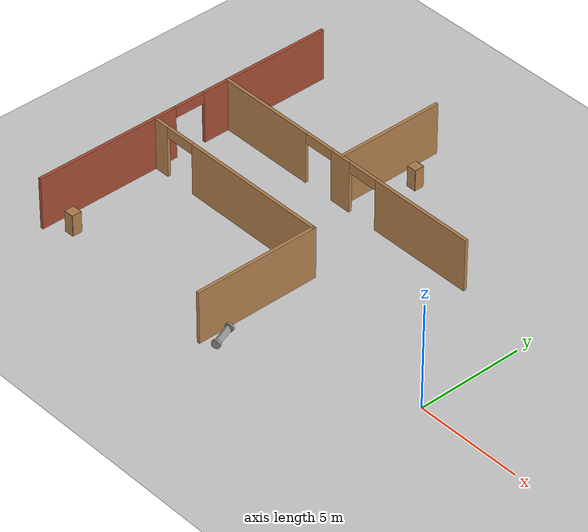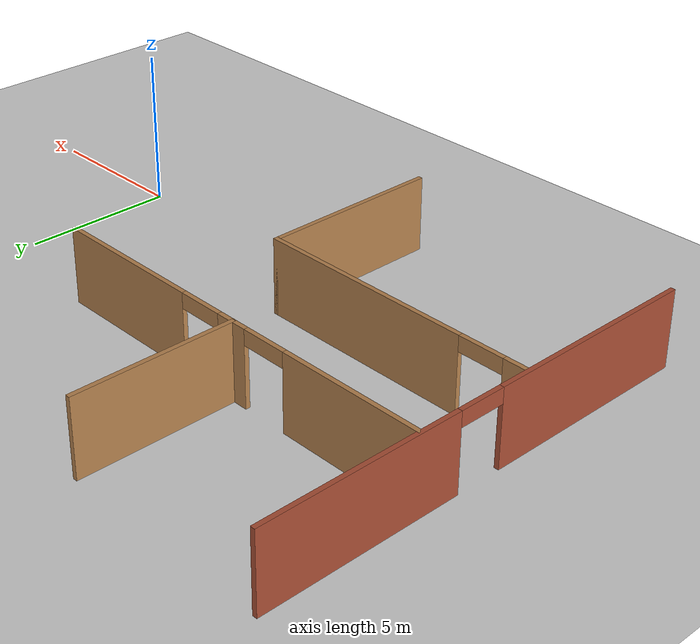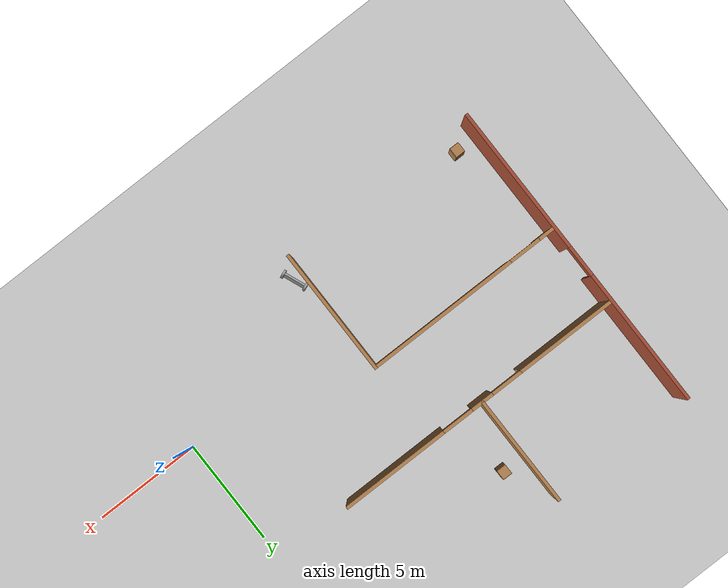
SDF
<sdf version="1.6">
 <world name="default">
  <model name="ground_plane">
   <static>1</static>
   <link name="link">
    <collision name="collision">
     <geometry><plane><normal>0 0 1</normal><size>100 100</size></plane></geometry>
     <surface><friction><ode><mu>100</mu><mu2>50</mu2></ode></friction></surface>
    </collision>
    <visual name="visual">
     <cast_shadows>0</cast_shadows>
     <geometry><plane><normal>0 0 1</normal><size>100 100</size></plane></geometry>
     <material>
      <script><uri>file://media/materials/scripts/gazebo.material</uri><name>Gazebo/Grey</name></script>
     </material>
    </visual>
   </link>
  </model>
  <model name="robot">
   <link name="link_0">
    <pose>0 0 -0.000101 0 -0 0</pose>
    <inertial>
     <mass>1</mass>
     <inertia>
      <ixx>0.166667</ixx>
      <ixy>0</ixy>
      <ixz>0</ixz>
      <iyy>0.166667</iyy>
      <iyz>0</iyz>
      <izz>0.166667</izz>
     </inertia>
    </inertial>
    <visual name="visual">
     <geometry><box><size>0.3 1 0.1</size></box></geometry>
     <material>
      <lighting>1</lighting>
      <script><uri>file://media/materials/scripts/gazebo.material</uri><name>Gazebo/Grey</name></script>
      <shader type="pixel"><normal_map>__default__</normal_map></shader>
      <ambient>0.3 0.3 0.3 1</ambient>
      <diffuse>0.7 0.7 0.7 1</diffuse>
      <specular>0.01 0.01 0.01 1</specular>
      <emissive>0 0 0 1</emissive>
     </material>
    </visual>
    <collision name="collision">
     <geometry><box><size>0.3 1 0.1</size></box></geometry>
     <surface>
      <friction>
       <ode><mu>1</mu><mu2>1</mu2><fdir1>0 0 0</fdir1><slip1>0</slip1><slip2>0</slip2></ode>
       <torsional>
        <coefficient>1</coefficient>
        <patch_radius>0</patch_radius>
        <surface_radius>0</surface_radius>
        <use_patch_radius>1</use_patch_radius>
        <ode><slip>0</slip></ode>
       </torsional>
      </friction>
      <bounce><restitution_coefficient>0</restitution_coefficient><threshold>1e+06</threshold></bounce>
      <contact>
       <collide_without_contact>0</collide_without_contact>
       <collide_without_contact_bitmask>1</collide_without_contact_bitmask>
       <collide_bitmask>1</collide_bitmask>
       <ode>
        <soft_cfm>0</soft_cfm>
        <soft_erp>0.2</soft_erp>
        <kp>1e+13</kp>
        <kd>1</kd>
        <max_vel>0.01</max_vel>
        <min_depth>0</min_depth>
       </ode>
       <bullet>
        <split_impulse>1</split_impulse>
        <split_impulse_penetration_threshold>-0.01</split_impulse_penetration_threshold>
        <soft_cfm>0</soft_cfm>
        <soft_erp>0.2</soft_erp>
        <kp>1e+13</kp>
        <kd>1</kd>
       </bullet>
      </contact>
     </surface>
    </collision>
   </link>
   <link name="link_1">
    <pose>0 -0.550019 -0.000101 1.5707 -0 0</pose>
    <inertial>
     <mass>1</mass>
     <inertia><ixx>0.145833</ixx><ixy>0</ixy><ixz>0</ixz><iyy>0.145833</iyy><iyz>0</iyz><izz>0.125</izz></inertia>
    </inertial>
    <visual name="visual">
     <geometry><cylinder><radius>0.2</radius><length>0.1</length></cylinder></geometry>
     <material>
      <lighting>1</lighting>
      <script><uri>file://media/materials/scripts/gazebo.material</uri><name>Gazebo/Grey</name></script>
      <shader type="pixel"><normal_map>__default__</normal_map></shader>
      <ambient>0.3 0.3 0.3 1</ambient>
      <diffuse>0.7 0.7 0.7 1</diffuse>
      <specular>0.01 0.01 0.01 1</specular>
      <emissive>0 0 0 1</emissive>
     </material>
    </visual>
    <collision name="collision">
     <geometry><cylinder><radius>0.2</radius><length>0.1</length></cylinder></geometry>
     <surface>
      <friction>
       <ode><mu>1</mu><mu2>1</mu2><fdir1>0 0 0</fdir1><slip1>0</slip1><slip2>0</slip2></ode>
       <torsional>
        <coefficient>1</coefficient>
        <patch_radius>0</patch_radius>
        <surface_radius>0</surface_radius>
        <use_patch_radius>1</use_patch_radius>
        <ode><slip>0</slip></ode>
       </torsional>
      </friction>
      <bounce><restitution_coefficient>0</restitution_coefficient><threshold>1e+06</threshold></bounce>
      <contact>
       <collide_without_contact>0</collide_without_contact>
       <collide_without_contact_bitmask>1</collide_without_contact_bitmask>
       <collide_bitmask>1</collide_bitmask>
       <ode>
        <soft_cfm>0</soft_cfm>
        <soft_erp>0.2</soft_erp>
        <kp>1e+13</kp>
        <kd>1</kd>
        <max_vel>0.01</max_vel>
        <min_depth>0</min_depth>
       </ode>
       <bullet>
        <split_impulse>1</split_impulse>
        <split_impulse_penetration_threshold>-0.01</split_impulse_penetration_threshold>
        <soft_cfm>0</soft_cfm>
        <soft_erp>0.2</soft_erp>
        <kp>1e+13</kp>
        <kd>1</kd>
       </bullet>
      </contact>
     </surface>
    </collision>
   </link>
   <link name="link_1_clone">
    <pose>0 0.550019 0.000202 1.5707 -0 0</pose>
    <inertial>
     <mass>1</mass>
     <inertia><ixx>0.145833</ixx><ixy>0</ixy><ixz>0</ixz><iyy>0.145833</iyy><iyz>0</iyz><izz>0.125</izz></inertia>
    </inertial>
    <visual name="visual">
     <geometry><cylinder><radius>0.2</radius><length>0.1</length></cylinder></geometry>
     <material>
      <lighting>1</lighting>
      <script><uri>file://media/materials/scripts/gazebo.material</uri><name>Gazebo/Grey</name></script>
      <shader type="pixel"><normal_map>__default__</normal_map></shader>
      <ambient>0.3 0.3 0.3 1</ambient>
      <diffuse>0.7 0.7 0.7 1</diffuse>
      <specular>0.01 0.01 0.01 1</specular>
      <emissive>0 0 0 1</emissive>
     </material>
    </visual>
    <collision name="collision">
     <geometry><cylinder><radius>0.2</radius><length>0.1</length></cylinder></geometry>
     <surface>
      <friction>
       <ode><mu>1</mu><mu2>1</mu2><fdir1>0 0 0</fdir1><slip1>0</slip1><slip2>0</slip2></ode>
       <torsional>
        <coefficient>1</coefficient>
        <patch_radius>0</patch_radius>
        <surface_radius>0</surface_radius>
        <use_patch_radius>1</use_patch_radius>
        <ode><slip>0</slip></ode>
       </torsional>
      </friction>
      <bounce><restitution_coefficient>0</restitution_coefficient><threshold>1e+06</threshold></bounce>
      <contact>
       <collide_without_contact>0</collide_without_contact>
       <collide_without_contact_bitmask>1</collide_without_contact_bitmask>
       <collide_bitmask>1</collide_bitmask>
       <ode>
        <soft_cfm>0</soft_cfm>
        <soft_erp>0.2</soft_erp>
        <kp>1e+13</kp>
        <kd>1</kd>
        <max_vel>0.01</max_vel>
        <min_depth>0</min_depth>
       </ode>
       <bullet>
        <split_impulse>1</split_impulse>
        <split_impulse_penetration_threshold>-0.01</split_impulse_penetration_threshold>
        <soft_cfm>0</soft_cfm>
        <soft_erp>0.2</soft_erp>
        <kp>1e+13</kp>
        <kd>1</kd>
       </bullet>
      </contact>
     </surface>
    </collision>
   </link>
   <joint name="link_0_JOINT_1" type="revolute">
    <parent>link_0</parent>
    <child>link_1</child>
    <axis>
     <xyz>0 0 1</xyz>
     <use_parent_model_frame>0</use_parent_model_frame>
     <limit>
      <lower>-1.79769e+308</lower>
      <upper>1.79769e+308</upper>
      <effort>-1</effort>
      <velocity>-1</velocity>
     </limit>
     <dynamics>
      <spring_reference>0</spring_reference>
      <spring_stiffness>0</spring_stiffness>
      <damping>0</damping>
     </dynamics>
    </axis>
    <physics>
     <ode><limit><cfm>0</cfm><erp>0.2</erp></limit><suspension><cfm>0</cfm><erp>0.2</erp></suspension></ode>
    </physics>
   </joint>
   <joint name="link_0_JOINT_3" type="revolute">
    <parent>link_0</parent>
    <child>link_1_clone</child>
    <axis>
     <xyz>1 0 0</xyz>
     <use_parent_model_frame>0</use_parent_model_frame>
     <limit>
      <lower>-1.79769e+308</lower>
      <upper>1.79769e+308</upper>
      <effort>-1</effort>
      <velocity>-1</velocity>
     </limit>
     <dynamics>
      <spring_reference>0</spring_reference>
      <spring_stiffness>0</spring_stiffness>
      <damping>0</damping>
     </dynamics>
    </axis>
    <physics>
     <ode><limit><cfm>0</cfm><erp>0.2</erp></limit><suspension><cfm>0</cfm><erp>0.2</erp></suspension></ode>
    </physics>
   </joint>
   <static>0</static>
   <pose>-7.95995 -2.96753 0.200034 3.14128 -1.17564 -2.76196</pose>
  </model>
  <model name="cabinet">
   <static>1</static>
   <link name="cabinet_bottom_plate">
    <inertial>
     <pose>0 0 -1 0 -0 0</pose>
     <inertia><ixx>2.05</ixx><ixy>0</ixy><ixz>0</ixz><iyy>2.05</iyy><iyz>0</iyz><izz>2.05</izz></inertia>
     <mass>25</mass>
    </inertial>
    <collision name="cabinet_bottom_plate_geom">
     <pose>0 0 0.01 0 -0 0</pose>
     <geometry><box><size>0.45 0.45 0.02</size></box></geometry>
    </collision>
    <visual name="cabinet_bottom_plate_geom_visual">
     <pose>0 0 0.01 0 -0 0</pose>
     <geometry><box><size>0.45 0.45 0.02</size></box></geometry>
     <material>
      <script><uri>file://media/materials/scripts/gazebo.material</uri><name>Gazebo/Wood</name></script>
     </material>
    </visual>
    <collision name="cabinet_bottom_plate_geom_cabinet_back_plate">
     <pose>0.235 0 0.51 0 -0 0</pose>
     <geometry><box><size>0.02 0.45 1.02</size></box></geometry>
    </collision>
    <visual name="cabinet_bottom_plate_geom_cabinet_back_plate_visual">
     <pose>0.235 0 0.51 0 -0 0</pose>
     <geometry><box><size>0.02 0.45 1.02</size></box></geometry>
     <material>
      <script><uri>file://media/materials/scripts/gazebo.material</uri><name>Gazebo/Wood</name></script>
     </material>
    </visual>
    <collision name="cabinet_bottom_plate_geom_cabinet_left_plate">
     <pose>0 0.235 0.51 0 -0 0</pose>
     <geometry><box><size>0.45 0.02 1.02</size></box></geometry>
    </collision>
    <visual name="cabinet_bottom_plate_geom_cabinet_left_plate_visual">
     <pose>0 0.235 0.51 0 -0 0</pose>
     <geometry><box><size>0.45 0.02 1.02</size></box></geometry>
     <material>
      <script><uri>file://media/materials/scripts/gazebo.material</uri><name>Gazebo/Wood</name></script>
     </material>
    </visual>
    <collision name="cabinet_bottom_plate_geom_cabinet_middle_plate">
     <pose>0 0 0.51 0 -0 0</pose>
     <geometry><box><size>0.45 0.45 0.02</size></box></geometry>
    </collision>
    <visual name="cabinet_bottom_plate_geom_cabinet_middle_plate_visual">
     <pose>0 0 0.51 0 -0 0</pose>
     <geometry><box><size>0.45 0.45 0.02</size></box></geometry>
     <material>
      <script><uri>file://media/materials/scripts/gazebo.material</uri><name>Gazebo/Wood</name></script>
     </material>
    </visual>
    <collision name="cabinet_bottom_plate_geom_cabinet_right_plate">
     <pose>0 -0.235 0.51 0 -0 0</pose>
     <geometry><box><size>0.45 0.02 1.02</size></box></geometry>
    </collision>
    <visual name="cabinet_bottom_plate_geom_cabinet_right_plate_visual">
     <pose>0 -0.235 0.51 0 -0 0</pose>
     <geometry><box><size>0.45 0.02 1.02</size></box></geometry>
     <material>
      <script><uri>file://media/materials/scripts/gazebo.material</uri><name>Gazebo/Wood</name></script>
     </material>
    </visual>
    <collision name="cabinet_bottom_plate_geom_cabinet_top_plate">
     <pose>0 0 1.01 0 -0 0</pose>
     <geometry><box><size>0.45 0.45 0.02</size></box></geometry>
    </collision>
    <visual name="cabinet_bottom_plate_geom_cabinet_top_plate_visual">
     <pose>0 0 1.01 0 -0 0</pose>
     <geometry><box><size>0.45 0.45 0.02</size></box></geometry>
     <material>
      <script><uri>file://media/materials/scripts/gazebo.material</uri><name>Gazebo/Wood</name></script>
     </material>
    </visual>
   </link>
   <pose>-16.8928 -3.00389 0 0 -0 0</pose>
  </model>
  <model name="cabinet_0">
   <static>1</static>
   <link name="cabinet_bottom_plate">
    <inertial>
     <pose>0 0 -1 0 -0 0</pose>
     <inertia><ixx>2.05</ixx><ixy>0</ixy><ixz>0</ixz><iyy>2.05</iyy><iyz>0</iyz><izz>2.05</izz></inertia>
     <mass>25</mass>
    </inertial>
    <collision name="cabinet_bottom_plate_geom">
     <pose>0 0 0.01 0 -0 0</pose>
     <geometry><box><size>0.45 0.45 0.02</size></box></geometry>
    </collision>
    <visual name="cabinet_bottom_plate_geom_visual">
     <pose>0 0 0.01 0 -0 0</pose>
     <geometry><box><size>0.45 0.45 0.02</size></box></geometry>
     <material>
      <script><uri>file://media/materials/scripts/gazebo.material</uri><name>Gazebo/Wood</name></script>
     </material>
    </visual>
    <collision name="cabinet_bottom_plate_geom_cabinet_back_plate">
     <pose>0.235 0 0.51 0 -0 0</pose>
     <geometry><box><size>0.02 0.45 1.02</size></box></geometry>
    </collision>
    <visual name="cabinet_bottom_plate_geom_cabinet_back_plate_visual">
     <pose>0.235 0 0.51 0 -0 0</pose>
     <geometry><box><size>0.02 0.45 1.02</size></box></geometry>
     <material>
      <script><uri>file://media/materials/scripts/gazebo.material</uri><name>Gazebo/Wood</name></script>
     </material>
    </visual>
    <collision name="cabinet_bottom_plate_geom_cabinet_left_plate">
     <pose>0 0.235 0.51 0 -0 0</pose>
     <geometry><box><size>0.45 0.02 1.02</size></box></geometry>
    </collision>
    <visual name="cabinet_bottom_plate_geom_cabinet_left_plate_visual">
     <pose>0 0.235 0.51 0 -0 0</pose>
     <geometry><box><size>0.45 0.02 1.02</size></box></geometry>
     <material>
      <script><uri>file://media/materials/scripts/gazebo.material</uri><name>Gazebo/Wood</name></script>
     </material>
    </visual>
    <collision name="cabinet_bottom_plate_geom_cabinet_middle_plate">
     <pose>0 0 0.51 0 -0 0</pose>
     <geometry><box><size>0.45 0.45 0.02</size></box></geometry>
    </collision>
    <visual name="cabinet_bottom_plate_geom_cabinet_middle_plate_visual">
     <pose>0 0 0.51 0 -0 0</pose>
     <geometry><box><size>0.45 0.45 0.02</size></box></geometry>
     <material>
      <script><uri>file://media/materials/scripts/gazebo.material</uri><name>Gazebo/Wood</name></script>
     </material>
    </visual>
    <collision name="cabinet_bottom_plate_geom_cabinet_right_plate">
     <pose>0 -0.235 0.51 0 -0 0</pose>
     <geometry><box><size>0.45 0.02 1.02</size></box></geometry>
    </collision>
    <visual name="cabinet_bottom_plate_geom_cabinet_right_plate_visual">
     <pose>0 -0.235 0.51 0 -0 0</pose>
     <geometry><box><size>0.45 0.02 1.02</size></box></geometry>
     <material>
      <script><uri>file://media/materials/scripts/gazebo.material</uri><name>Gazebo/Wood</name></script>
     </material>
    </visual>
    <collision name="cabinet_bottom_plate_geom_cabinet_top_plate">
     <pose>0 0 1.01 0 -0 0</pose>
     <geometry><box><size>0.45 0.45 0.02</size></box></geometry>
    </collision>
    <visual name="cabinet_bottom_plate_geom_cabinet_top_plate_visual">
     <pose>0 0 1.01 0 -0 0</pose>
     <geometry><box><size>0.45 0.45 0.02</size></box></geometry>
     <material>
      <script><uri>file://media/materials/scripts/gazebo.material</uri><name>Gazebo/Wood</name></script>
     </material>
    </visual>
   </link>
   <pose>-10.0038 9.06214 0 0 -0 0</pose>
  </model>
  <model name="myhouse">
   <link name="Wall_1">
    <pose>-12.55 -0.012047 0 0 0 -1.5708</pose>
    <visual name="Wall_1_Visual_0">
     <pose>-4.24352 0 1.25 0 -0 0</pose>
     <geometry><box><size>6.51297 0.15 2.5</size></box></geometry>
     <material>
      <script><uri>file://media/materials/scripts/gazebo.material</uri><name>Gazebo/Bricks</name></script>
      <ambient>1 1 1 1</ambient>
      <shader type="pixel"/>
      <diffuse>1 1 1 1</diffuse>
      <specular>0.2 0.2 0.2 1</specular>
      <emissive>0 0 0 1</emissive>
     </material>
     <meta><layer>0</layer></meta>
    </visual>
    <visual name="Wall_1_Visual_1">
     <pose>4.00648 0 1.25 0 -0 0</pose>
     <geometry><box><size>6.98703 0.15 2.5</size></box></geometry>
     <material>
      <script><uri>file://media/materials/scripts/gazebo.material</uri><name>Gazebo/Bricks</name></script>
      <ambient>1 1 1 1</ambient>
      <shader type="pixel"/>
      <diffuse>1 1 1 1</diffuse>
      <specular>0.2 0.2 0.2 1</specular>
      <emissive>0 0 0 1</emissive>
     </material>
     <meta><layer>0</layer></meta>
    </visual>
    <visual name="Wall_1_Visual_2">
     <pose>-0.237035 0 2.25 0 -0 0</pose>
     <geometry><box><size>1.5 0.15 0.5</size></box></geometry>
     <material>
      <script><uri>file://media/materials/scripts/gazebo.material</uri><name>Gazebo/Bricks</name></script>
      <ambient>1 1 1 1</ambient>
      <shader type="pixel"/>
      <diffuse>1 1 1 1</diffuse>
      <specular>0.2 0.2 0.2 1</specular>
      <emissive>0 0 0 1</emissive>
     </material>
     <meta><layer>0</layer></meta>
    </visual>
    <collision name="Wall_1_Collision_0">
     <pose>-4.24352 0 1.25 0 -0 0</pose>
     <geometry><box><size>6.51297 0.15 2.5</size></box></geometry>
     <surface>
      <friction>
       <ode><mu>1</mu><mu2>1</mu2><fdir1>0 0 0</fdir1><slip1>0</slip1><slip2>0</slip2></ode>
       <torsional>
        <coefficient>1</coefficient>
        <patch_radius>0</patch_radius>
        <surface_radius>0</surface_radius>
        <use_patch_radius>1</use_patch_radius>
        <ode><slip>0</slip></ode>
       </torsional>
      </friction>
      <bounce><restitution_coefficient>0</restitution_coefficient><threshold>1e+06</threshold></bounce>
      <contact>
       <collide_without_contact>0</collide_without_contact>
       <collide_without_contact_bitmask>1</collide_without_contact_bitmask>
       <collide_bitmask>1</collide_bitmask>
       <ode>
        <soft_cfm>0</soft_cfm>
        <soft_erp>0.2</soft_erp>
        <kp>1e+13</kp>
        <kd>1</kd>
        <max_vel>0.01</max_vel>
        <min_depth>0</min_depth>
       </ode>
       <bullet>
        <split_impulse>1</split_impulse>
        <split_impulse_penetration_threshold>-0.01</split_impulse_penetration_threshold>
        <soft_cfm>0</soft_cfm>
        <soft_erp>0.2</soft_erp>
        <kp>1e+13</kp>
        <kd>1</kd>
       </bullet>
      </contact>
     </surface>
    </collision>
    <collision name="Wall_1_Collision_1">
     <pose>4.00648 0 1.25 0 -0 0</pose>
     <geometry><box><size>6.98703 0.15 2.5</size></box></geometry>
     <surface>
      <friction>
       <ode><mu>1</mu><mu2>1</mu2><fdir1>0 0 0</fdir1><slip1>0</slip1><slip2>0</slip2></ode>
       <torsional>
        <coefficient>1</coefficient>
        <patch_radius>0</patch_radius>
        <surface_radius>0</surface_radius>
        <use_patch_radius>1</use_patch_radius>
        <ode><slip>0</slip></ode>
       </torsional>
      </friction>
      <bounce><restitution_coefficient>0</restitution_coefficient><threshold>1e+06</threshold></bounce>
      <contact>
       <collide_without_contact>0</collide_without_contact>
       <collide_without_contact_bitmask>1</collide_without_contact_bitmask>
       <collide_bitmask>1</collide_bitmask>
       <ode>
        <soft_cfm>0</soft_cfm>
        <soft_erp>0.2</soft_erp>
        <kp>1e+13</kp>
        <kd>1</kd>
        <max_vel>0.01</max_vel>
        <min_depth>0</min_depth>
       </ode>
       <bullet>
        <split_impulse>1</split_impulse>
        <split_impulse_penetration_threshold>-0.01</split_impulse_penetration_threshold>
        <soft_cfm>0</soft_cfm>
        <soft_erp>0.2</soft_erp>
        <kp>1e+13</kp>
        <kd>1</kd>
       </bullet>
      </contact>
     </surface>
    </collision>
    <collision name="Wall_1_Collision_2">
     <pose>-0.237035 0 2.25 0 -0 0</pose>
     <geometry><box><size>1.5 0.15 0.5</size></box></geometry>
     <surface>
      <friction>
       <ode><mu>1</mu><mu2>1</mu2><fdir1>0 0 0</fdir1><slip1>0</slip1><slip2>0</slip2></ode>
       <torsional>
        <coefficient>1</coefficient>
        <patch_radius>0</patch_radius>
        <surface_radius>0</surface_radius>
        <use_patch_radius>1</use_patch_radius>
        <ode><slip>0</slip></ode>
       </torsional>
      </friction>
      <bounce><restitution_coefficient>0</restitution_coefficient><threshold>1e+06</threshold></bounce>
      <contact>
       <collide_without_contact>0</collide_without_contact>
       <collide_without_contact_bitmask>1</collide_without_contact_bitmask>
       <collide_bitmask>1</collide_bitmask>
       <ode>
        <soft_cfm>0</soft_cfm>
        <soft_erp>0.2</soft_erp>
        <kp>1e+13</kp>
        <kd>1</kd>
        <max_vel>0.01</max_vel>
        <min_depth>0</min_depth>
       </ode>
       <bullet>
        <split_impulse>1</split_impulse>
        <split_impulse_penetration_threshold>-0.01</split_impulse_penetration_threshold>
        <soft_cfm>0</soft_cfm>
        <soft_erp>0.2</soft_erp>
        <kp>1e+13</kp>
        <kd>1</kd>
       </bullet>
      </contact>
     </surface>
    </collision>
   </link>
   <link name="Wall_10">
    <pose>-3.11994 -4.47756 0 0 0 -1.5708</pose>
    <visual name="Wall_10_Visual">
     <pose>0 0 1.25 0 -0 0</pose>
     <geometry><box><size>6 0.15 2.5</size></box></geometry>
     <material>
      <script><uri>file://media/materials/scripts/gazebo.material</uri><name>Gazebo/Wood</name></script>
      <ambient>0.435294 0.796078 0.67451 1</ambient>
      <shader type="pixel"/>
      <diffuse>1 1 1 1</diffuse>
      <specular>0.2 0.2 0.2 1</specular>
      <emissive>0 0 0 1</emissive>
     </material>
     <meta><layer>0</layer></meta>
    </visual>
    <collision name="Wall_10_Collision">
     <pose>0 0 1.25 0 -0 0</pose>
     <geometry><box><size>6 0.15 2.5</size></box></geometry>
     <surface>
      <friction>
       <ode><mu>1</mu><mu2>1</mu2><fdir1>0 0 0</fdir1><slip1>0</slip1><slip2>0</slip2></ode>
       <torsional>
        <coefficient>1</coefficient>
        <patch_radius>0</patch_radius>
        <surface_radius>0</surface_radius>
        <use_patch_radius>1</use_patch_radius>
        <ode><slip>0</slip></ode>
       </torsional>
      </friction>
      <bounce><restitution_coefficient>0</restitution_coefficient><threshold>1e+06</threshold></bounce>
      <contact>
       <collide_without_contact>0</collide_without_contact>
       <collide_without_contact_bitmask>1</collide_without_contact_bitmask>
       <collide_bitmask>1</collide_bitmask>
       <ode>
        <soft_cfm>0</soft_cfm>
        <soft_erp>0.2</soft_erp>
        <kp>1e+13</kp>
        <kd>1</kd>
        <max_vel>0.01</max_vel>
        <min_depth>0</min_depth>
       </ode>
       <bullet>
        <split_impulse>1</split_impulse>
        <split_impulse_penetration_threshold>-0.01</split_impulse_penetration_threshold>
        <soft_cfm>0</soft_cfm>
        <soft_erp>0.2</soft_erp>
        <kp>1e+13</kp>
        <kd>1</kd>
       </bullet>
      </contact>
     </surface>
    </collision>
   </link>
   <link name="Wall_14">
    <pose>-5.73434 4.88705 0 0 -0 1.5708</pose>
    <visual name="Wall_14_Visual">
     <pose>0 0 1.25 0 -0 0</pose>
     <geometry><box><size>5.25 0.15 2.5</size></box></geometry>
     <material>
      <script><uri>file://media/materials/scripts/gazebo.material</uri><name>Gazebo/Wood</name></script>
      <ambient>1 0 0 1</ambient>
      <shader type="pixel"/>
      <diffuse>1 1 1 1</diffuse>
      <specular>0.2 0.2 0.2 1</specular>
      <emissive>0 0 0 1</emissive>
     </material>
     <meta><layer>0</layer></meta>
    </visual>
    <collision name="Wall_14_Collision">
     <pose>0 0 1.25 0 -0 0</pose>
     <geometry><box><size>5.25 0.15 2.5</size></box></geometry>
     <surface>
      <friction>
       <ode><mu>1</mu><mu2>1</mu2><fdir1>0 0 0</fdir1><slip1>0</slip1><slip2>0</slip2></ode>
       <torsional>
        <coefficient>1</coefficient>
        <patch_radius>0</patch_radius>
        <surface_radius>0</surface_radius>
        <use_patch_radius>1</use_patch_radius>
        <ode><slip>0</slip></ode>
       </torsional>
      </friction>
      <bounce><restitution_coefficient>0</restitution_coefficient><threshold>1e+06</threshold></bounce>
      <contact>
       <collide_without_contact>0</collide_without_contact>
       <collide_without_contact_bitmask>1</collide_without_contact_bitmask>
       <collide_bitmask>1</collide_bitmask>
       <ode>
        <soft_cfm>0</soft_cfm>
        <soft_erp>0.2</soft_erp>
        <kp>1e+13</kp>
        <kd>1</kd>
        <max_vel>0.01</max_vel>
        <min_depth>0</min_depth>
       </ode>
       <bullet>
        <split_impulse>1</split_impulse>
        <split_impulse_penetration_threshold>-0.01</split_impulse_penetration_threshold>
        <soft_cfm>0</soft_cfm>
        <soft_erp>0.2</soft_erp>
        <kp>1e+13</kp>
        <kd>1</kd>
       </bullet>
      </contact>
     </surface>
    </collision>
   </link>
   <link name="Wall_6">
    <pose>-5.59147 2.30893 0 0 -0 0</pose>
    <visual name="Wall_6_Visual_0">
     <pose>-4.58914 0 1.25 0 -0 0</pose>
     <geometry><box><size>4.82171 0.15 2.5</size></box></geometry>
     <material>
      <script><uri>file://media/materials/scripts/gazebo.material</uri><name>Gazebo/Wood</name></script>
      <ambient>1 0 0 1</ambient>
      <shader type="pixel"/>
      <diffuse>1 1 1 1</diffuse>
      <specular>0.2 0.2 0.2 1</specular>
      <emissive>0 0 0 1</emissive>
     </material>
     <meta><layer>0</layer></meta>
    </visual>
    <visual name="Wall_6_Visual_1">
     <pose>-0.14426 0 1.25 0 -0 0</pose>
     <geometry><box><size>1.06805 0.15 2.5</size></box></geometry>
     <material>
      <script><uri>file://media/materials/scripts/gazebo.material</uri><name>Gazebo/Wood</name></script>
      <ambient>1 0 0 1</ambient>
      <shader type="pixel"/>
      <diffuse>1 1 1 1</diffuse>
      <specular>0.2 0.2 0.2 1</specular>
      <emissive>0 0 0 1</emissive>
     </material>
     <meta><layer>0</layer></meta>
    </visual>
    <visual name="Wall_6_Visual_2">
     <pose>4.44488 0 1.25 0 -0 0</pose>
     <geometry><box><size>5.11024 0.15 2.5</size></box></geometry>
     <material>
      <script><uri>file://media/materials/scripts/gazebo.material</uri><name>Gazebo/Wood</name></script>
      <ambient>1 0 0 1</ambient>
      <shader type="pixel"/>
      <diffuse>1 1 1 1</diffuse>
      <specular>0.2 0.2 0.2 1</specular>
      <emissive>0 0 0 1</emissive>
     </material>
     <meta><layer>0</layer></meta>
    </visual>
    <visual name="Wall_6_Visual_3">
     <pose>-1.42829 0 2.25 0 -0 0</pose>
     <geometry><box><size>1.5 0.15 0.5</size></box></geometry>
     <material>
      <script><uri>file://media/materials/scripts/gazebo.material</uri><name>Gazebo/Wood</name></script>
      <ambient>1 0 0 1</ambient>
      <shader type="pixel"/>
      <diffuse>1 1 1 1</diffuse>
      <specular>0.2 0.2 0.2 1</specular>
      <emissive>0 0 0 1</emissive>
     </material>
     <meta><layer>0</layer></meta>
    </visual>
    <visual name="Wall_6_Visual_4">
     <pose>1.13976 0 2.25 0 -0 0</pose>
     <geometry><box><size>1.5 0.15 0.5</size></box></geometry>
     <material>
      <script><uri>file://media/materials/scripts/gazebo.material</uri><name>Gazebo/Wood</name></script>
      <ambient>1 0 0 1</ambient>
      <shader type="pixel"/>
      <diffuse>1 1 1 1</diffuse>
      <specular>0.2 0.2 0.2 1</specular>
      <emissive>0 0 0 1</emissive>
     </material>
     <meta><layer>0</layer></meta>
    </visual>
    <collision name="Wall_6_Collision_0">
     <pose>-4.58914 0 1.25 0 -0 0</pose>
     <geometry><box><size>4.82171 0.15 2.5</size></box></geometry>
     <surface>
      <friction>
       <ode><mu>1</mu><mu2>1</mu2><fdir1>0 0 0</fdir1><slip1>0</slip1><slip2>0</slip2></ode>
       <torsional>
        <coefficient>1</coefficient>
        <patch_radius>0</patch_radius>
        <surface_radius>0</surface_radius>
        <use_patch_radius>1</use_patch_radius>
        <ode><slip>0</slip></ode>
       </torsional>
      </friction>
      <bounce><restitution_coefficient>0</restitution_coefficient><threshold>1e+06</threshold></bounce>
      <contact>
       <collide_without_contact>0</collide_without_contact>
       <collide_without_contact_bitmask>1</collide_without_contact_bitmask>
       <collide_bitmask>1</collide_bitmask>
       <ode>
        <soft_cfm>0</soft_cfm>
        <soft_erp>0.2</soft_erp>
        <kp>1e+13</kp>
        <kd>1</kd>
        <max_vel>0.01</max_vel>
        <min_depth>0</min_depth>
       </ode>
       <bullet>
        <split_impulse>1</split_impulse>
        <split_impulse_penetration_threshold>-0.01</split_impulse_penetration_threshold>
        <soft_cfm>0</soft_cfm>
        <soft_erp>0.2</soft_erp>
        <kp>1e+13</kp>
        <kd>1</kd>
       </bullet>
      </contact>
     </surface>
    </collision>
    <collision name="Wall_6_Collision_2">
     <pose>4.44488 0 1.25 0 -0 0</pose>
     <geometry><box><size>5.11024 0.15 2.5</size></box></geometry>
     <surface>
      <friction>
       <ode><mu>1</mu><mu2>1</mu2><fdir1>0 0 0</fdir1><slip1>0</slip1><slip2>0</slip2></ode>
       <torsional>
        <coefficient>1</coefficient>
        <patch_radius>0</patch_radius>
        <surface_radius>0</surface_radius>
        <use_patch_radius>1</use_patch_radius>
        <ode><slip>0</slip></ode>
       </torsional>
      </friction>
      <bounce><restitution_coefficient>0</restitution_coefficient><threshold>1e+06</threshold></bounce>
      <contact>
       <collide_without_contact>0</collide_without_contact>
       <collide_without_contact_bitmask>1</collide_without_contact_bitmask>
       <collide_bitmask>1</collide_bitmask>
       <ode>
        <soft_cfm>0</soft_cfm>
        <soft_erp>0.2</soft_erp>
        <kp>1e+13</kp>
        <kd>1</kd>
        <max_vel>0.01</max_vel>
        <min_depth>0</min_depth>
       </ode>
       <bullet>
        <split_impulse>1</split_impulse>
        <split_impulse_penetration_threshold>-0.01</split_impulse_penetration_threshold>
        <soft_cfm>0</soft_cfm>
        <soft_erp>0.2</soft_erp>
        <kp>1e+13</kp>
        <kd>1</kd>
       </bullet>
      </contact>
     </surface>
    </collision>
    <collision name="Wall_6_Collision_1">
     <pose>-0.14426 0 1.25 0 -0 0</pose>
     <geometry><box><size>1.06805 0.15 2.5</size></box></geometry>
     <surface>
      <friction>
       <ode><mu>1</mu><mu2>1</mu2><fdir1>0 0 0</fdir1><slip1>0</slip1><slip2>0</slip2></ode>
       <torsional>
        <coefficient>1</coefficient>
        <patch_radius>0</patch_radius>
        <surface_radius>0</surface_radius>
        <use_patch_radius>1</use_patch_radius>
        <ode><slip>0</slip></ode>
       </torsional>
      </friction>
      <bounce><restitution_coefficient>0</restitution_coefficient><threshold>1e+06</threshold></bounce>
      <contact>
       <collide_without_contact>0</collide_without_contact>
       <collide_without_contact_bitmask>1</collide_without_contact_bitmask>
       <collide_bitmask>1</collide_bitmask>
       <ode>
        <soft_cfm>0</soft_cfm>
        <soft_erp>0.2</soft_erp>
        <kp>1e+13</kp>
        <kd>1</kd>
        <max_vel>0.01</max_vel>
        <min_depth>0</min_depth>
       </ode>
       <bullet>
        <split_impulse>1</split_impulse>
        <split_impulse_penetration_threshold>-0.01</split_impulse_penetration_threshold>
        <soft_cfm>0</soft_cfm>
        <soft_erp>0.2</soft_erp>
        <kp>1e+13</kp>
        <kd>1</kd>
       </bullet>
      </contact>
     </surface>
    </collision>
    <collision name="Wall_6_Collision_3">
     <pose>-1.42829 0 2.25 0 -0 0</pose>
     <geometry><box><size>1.5 0.15 0.5</size></box></geometry>
     <surface>
      <friction>
       <ode><mu>1</mu><mu2>1</mu2><fdir1>0 0 0</fdir1><slip1>0</slip1><slip2>0</slip2></ode>
       <torsional>
        <coefficient>1</coefficient>
        <patch_radius>0</patch_radius>
        <surface_radius>0</surface_radius>
        <use_patch_radius>1</use_patch_radius>
        <ode><slip>0</slip></ode>
       </torsional>
      </friction>
      <bounce><restitution_coefficient>0</restitution_coefficient><threshold>1e+06</threshold></bounce>
      <contact>
       <collide_without_contact>0</collide_without_contact>
       <collide_without_contact_bitmask>1</collide_without_contact_bitmask>
       <collide_bitmask>1</collide_bitmask>
       <ode>
        <soft_cfm>0</soft_cfm>
        <soft_erp>0.2</soft_erp>
        <kp>1e+13</kp>
        <kd>1</kd>
        <max_vel>0.01</max_vel>
        <min_depth>0</min_depth>
       </ode>
       <bullet>
        <split_impulse>1</split_impulse>
        <split_impulse_penetration_threshold>-0.01</split_impulse_penetration_threshold>
        <soft_cfm>0</soft_cfm>
        <soft_erp>0.2</soft_erp>
        <kp>1e+13</kp>
        <kd>1</kd>
       </bullet>
      </contact>
     </surface>
    </collision>
    <collision name="Wall_6_Collision_4">
     <pose>1.13976 0 2.25 0 -0 0</pose>
     <geometry><box><size>1.5 0.15 0.5</size></box></geometry>
     <surface>
      <friction>
       <ode><mu>1</mu><mu2>1</mu2><fdir1>0 0 0</fdir1><slip1>0</slip1><slip2>0</slip2></ode>
       <torsional>
        <coefficient>1</coefficient>
        <patch_radius>0</patch_radius>
        <surface_radius>0</surface_radius>
        <use_patch_radius>1</use_patch_radius>
        <ode><slip>0</slip></ode>
       </torsional>
      </friction>
      <bounce><restitution_coefficient>0</restitution_coefficient><threshold>1e+06</threshold></bounce>
      <contact>
       <collide_without_contact>0</collide_without_contact>
       <collide_without_contact_bitmask>1</collide_without_contact_bitmask>
       <collide_bitmask>1</collide_bitmask>
       <ode>
        <soft_cfm>0</soft_cfm>
        <soft_erp>0.2</soft_erp>
        <kp>1e+13</kp>
        <kd>1</kd>
        <max_vel>0.01</max_vel>
        <min_depth>0</min_depth>
       </ode>
       <bullet>
        <split_impulse>1</split_impulse>
        <split_impulse_penetration_threshold>-0.01</split_impulse_penetration_threshold>
        <soft_cfm>0</soft_cfm>
        <soft_erp>0.2</soft_erp>
        <kp>1e+13</kp>
        <kd>1</kd>
       </bullet>
      </contact>
     </surface>
    </collision>
   </link>
   <link name="Wall_9">
    <pose>-7.79495 -1.55256 0 0 -0 0</pose>
    <visual name="Wall_9_Visual_0">
     <pose>-4.35154 0 1.25 0 -0 0</pose>
     <geometry><box><size>0.796919 0.15 2.5</size></box></geometry>
     <material>
      <script><uri>file://media/materials/scripts/gazebo.material</uri><name>Gazebo/Wood</name></script>
      <ambient>0.435294 0.796078 0.67451 1</ambient>
      <shader type="pixel"/>
      <diffuse>1 1 1 1</diffuse>
      <specular>0.2 0.2 0.2 1</specular>
      <emissive>0 0 0 1</emissive>
     </material>
     <meta><layer>0</layer></meta>
    </visual>
    <visual name="Wall_9_Visual_1">
     <pose>1.14846 0 1.25 0 -0 0</pose>
     <geometry><box><size>7.20308 0.15 2.5</size></box></geometry>
     <material>
      <script><uri>file://media/materials/scripts/gazebo.material</uri><name>Gazebo/Wood</name></script>
      <ambient>0.435294 0.796078 0.67451 1</ambient>
      <shader type="pixel"/>
      <diffuse>1 1 1 1</diffuse>
      <specular>0.2 0.2 0.2 1</specular>
      <emissive>0 0 0 1</emissive>
     </material>
     <meta><layer>0</layer></meta>
    </visual>
    <visual name="Wall_9_Visual_2">
     <pose>-3.20308 0 2.25 0 -0 0</pose>
     <geometry><box><size>1.5 0.15 0.5</size></box></geometry>
     <material>
      <script><uri>file://media/materials/scripts/gazebo.material</uri><name>Gazebo/Wood</name></script>
      <ambient>0.435294 0.796078 0.67451 1</ambient>
      <shader type="pixel"/>
      <diffuse>1 1 1 1</diffuse>
      <specular>0.2 0.2 0.2 1</specular>
      <emissive>0 0 0 1</emissive>
     </material>
     <meta><layer>0</layer></meta>
    </visual>
    <collision name="Wall_9_Collision_0">
     <pose>-4.35154 0 1.25 0 -0 0</pose>
     <geometry><box><size>0.796919 0.15 2.5</size></box></geometry>
     <surface>
      <friction>
       <ode><mu>1</mu><mu2>1</mu2><fdir1>0 0 0</fdir1><slip1>0</slip1><slip2>0</slip2></ode>
       <torsional>
        <coefficient>1</coefficient>
        <patch_radius>0</patch_radius>
        <surface_radius>0</surface_radius>
        <use_patch_radius>1</use_patch_radius>
        <ode><slip>0</slip></ode>
       </torsional>
      </friction>
      <bounce><restitution_coefficient>0</restitution_coefficient><threshold>1e+06</threshold></bounce>
      <contact>
       <collide_without_contact>0</collide_without_contact>
       <collide_without_contact_bitmask>1</collide_without_contact_bitmask>
       <collide_bitmask>1</collide_bitmask>
       <ode>
        <soft_cfm>0</soft_cfm>
        <soft_erp>0.2</soft_erp>
        <kp>1e+13</kp>
        <kd>1</kd>
        <max_vel>0.01</max_vel>
        <min_depth>0</min_depth>
       </ode>
       <bullet>
        <split_impulse>1</split_impulse>
        <split_impulse_penetration_threshold>-0.01</split_impulse_penetration_threshold>
        <soft_cfm>0</soft_cfm>
        <soft_erp>0.2</soft_erp>
        <kp>1e+13</kp>
        <kd>1</kd>
       </bullet>
      </contact>
     </surface>
    </collision>
    <collision name="Wall_9_Collision_1">
     <pose>1.14846 0 1.25 0 -0 0</pose>
     <geometry><box><size>7.20308 0.15 2.5</size></box></geometry>
     <surface>
      <friction>
       <ode><mu>1</mu><mu2>1</mu2><fdir1>0 0 0</fdir1><slip1>0</slip1><slip2>0</slip2></ode>
       <torsional>
        <coefficient>1</coefficient>
        <patch_radius>0</patch_radius>
        <surface_radius>0</surface_radius>
        <use_patch_radius>1</use_patch_radius>
        <ode><slip>0</slip></ode>
       </torsional>
      </friction>
      <bounce><restitution_coefficient>0</restitution_coefficient><threshold>1e+06</threshold></bounce>
      <contact>
       <collide_without_contact>0</collide_without_contact>
       <collide_without_contact_bitmask>1</collide_without_contact_bitmask>
       <collide_bitmask>1</collide_bitmask>
       <ode>
        <soft_cfm>0</soft_cfm>
        <soft_erp>0.2</soft_erp>
        <kp>1e+13</kp>
        <kd>1</kd>
        <max_vel>0.01</max_vel>
        <min_depth>0</min_depth>
       </ode>
       <bullet>
        <split_impulse>1</split_impulse>
        <split_impulse_penetration_threshold>-0.01</split_impulse_penetration_threshold>
        <soft_cfm>0</soft_cfm>
        <soft_erp>0.2</soft_erp>
        <kp>1e+13</kp>
        <kd>1</kd>
       </bullet>
      </contact>
     </surface>
    </collision>
    <collision name="Wall_9_Collision_2">
     <pose>-3.20308 0 2.25 0 -0 0</pose>
     <geometry><box><size>1.5 0.15 0.5</size></box></geometry>
     <surface>
      <friction>
       <ode><mu>1</mu><mu2>1</mu2><fdir1>0 0 0</fdir1><slip1>0</slip1><slip2>0</slip2></ode>
       <torsional>
        <coefficient>1</coefficient>
        <patch_radius>0</patch_radius>
        <surface_radius>0</surface_radius>
        <use_patch_radius>1</use_patch_radius>
        <ode><slip>0</slip></ode>
       </torsional>
      </friction>
      <bounce><restitution_coefficient>0</restitution_coefficient><threshold>1e+06</threshold></bounce>
      <contact>
       <collide_without_contact>0</collide_without_contact>
       <collide_without_contact_bitmask>1</collide_without_contact_bitmask>
       <collide_bitmask>1</collide_bitmask>
       <ode>
        <soft_cfm>0</soft_cfm>
        <soft_erp>0.2</soft_erp>
        <kp>1e+13</kp>
        <kd>1</kd>
        <max_vel>0.01</max_vel>
        <min_depth>0</min_depth>
       </ode>
       <bullet>
        <split_impulse>1</split_impulse>
        <split_impulse_penetration_threshold>-0.01</split_impulse_penetration_threshold>
        <soft_cfm>0</soft_cfm>
        <soft_erp>0.2</soft_erp>
        <kp>1e+13</kp>
        <kd>1</kd>
       </bullet>
      </contact>
     </surface>
    </collision>
   </link>
   <static>1</static>
   <pose>-5.324 3.68376 0 0 -0 0</pose>
  </model>
 </world>
</sdf>
